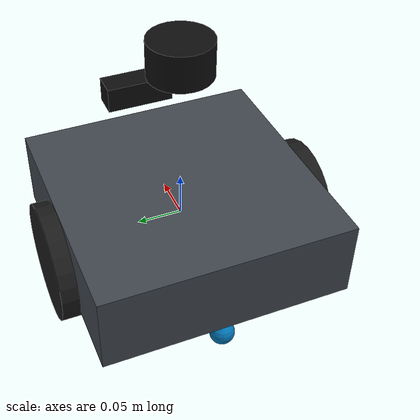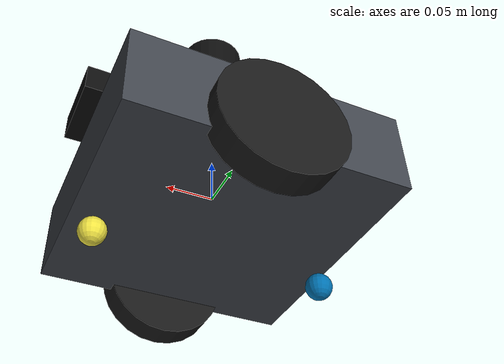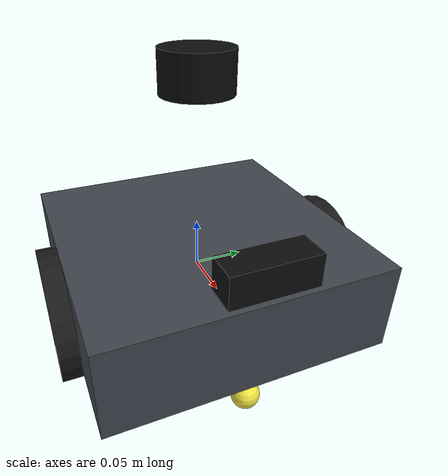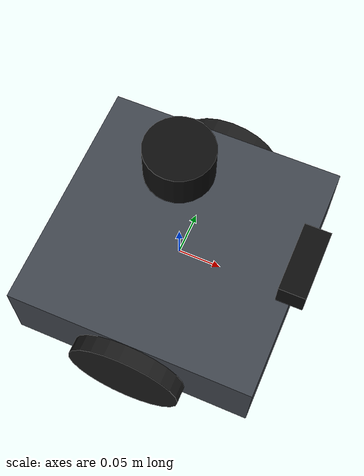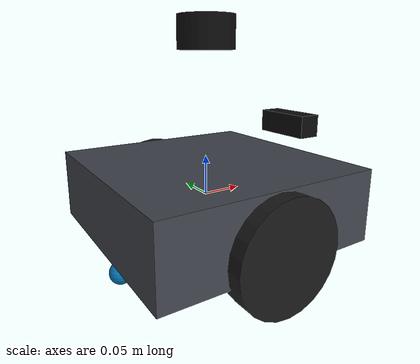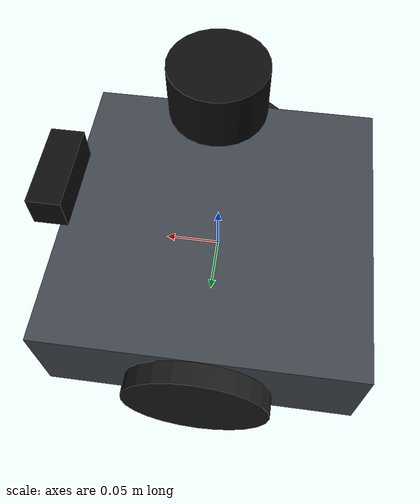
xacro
<?xml version="1.0"?>
<robot xmlns:xacro="http://www.ros.org/wiki/xacro" name="$(arg name)">
  <xacro:arg name="name" default="robot_1"/>
  <xacro:property name="name" value="$(arg name)"/>

  <xacro:property name="wheel_radius" value="0.066"/>
  <xacro:property name="wheel_sep" value="0.288"/>

  <!-- ============================== links =============================== -->
  <link name="${name}_base_link">
    <visual>
      <geometry><box size="0.28 0.28 0.09"/></geometry>
      <material name="body"><color rgba="0.25 0.27 0.30 1"/></material>
    </visual>
    <collision>
      <geometry><box size="0.28 0.28 0.09"/></geometry>
    </collision>
    <inertial>
      <mass value="4.0"/>
      <inertia ixx="0.0185" ixy="0" ixz="0" iyy="0.0185" iyz="0" izz="0.0294"/>
    </inertial>
  </link>

  <xacro:macro name="wheel" params="side y">
    <joint name="${name}_wheel_${side}_joint" type="continuous">
      <parent link="${name}_base_link"/>
      <child link="${name}_wheel_${side}_link"/>
      <origin xyz="0 ${y} -0.022" rpy="${-pi/2} 0 0"/>
      <axis xyz="0 0 1"/>
    </joint>
    <link name="${name}_wheel_${side}_link">
      <visual>
        <geometry><cylinder radius="${wheel_radius}" length="0.03"/></geometry>
        <material name="tire"><color rgba="0.1 0.1 0.1 1"/></material>
      </visual>
      <collision>
        <geometry><cylinder radius="${wheel_radius}" length="0.03"/></geometry>
      </collision>
      <inertial>
        <mass value="0.3"/>
        <inertia ixx="0.00033" ixy="0" ixz="0" iyy="0.00033" iyz="0" izz="0.00058"/>
      </inertial>
    </link>
  </xacro:macro>

  <xacro:wheel side="left" y="${wheel_sep / 2}"/>
  <xacro:wheel side="right" y="${-wheel_sep / 2}"/>

  <xacro:macro name="caster" params="label x">
    <joint name="${name}_caster_${label}_joint" type="fixed">
      <parent link="${name}_base_link"/>
      <child link="${name}_caster_${label}_link"/>
      <origin xyz="${x} 0 -0.076" rpy="0 0 0"/>
    </joint>
    <link name="${name}_caster_${label}_link">
      <visual><geometry><sphere radius="0.014"/></geometry></visual>
      <collision>
        <geometry><sphere radius="0.014"/></geometry>
        <surface><friction><ode><mu>0</mu><mu2>0</mu2></ode></friction></surface>
      </collision>
      <inertial><mass value="0.05"/><inertia ixx="0.00001" ixy="0" ixz="0" iyy="0.00001" iyz="0" izz="0.00001"/></inertial>
    </link>
  </xacro:macro>
  <xacro:caster label="front" x="0.12"/>
  <xacro:caster label="back" x="-0.12"/>

  <joint name="${name}_lidar_joint" type="fixed">
    <parent link="${name}_base_link"/>
    <child link="${name}_lidar_link"/>
    <origin xyz="0 0 0.20" rpy="0 0 0"/>
  </joint>
  <link name="${name}_lidar_link">
    <visual><geometry><cylinder radius="0.035" length="0.04"/></geometry>
      <material name="sensor"><color rgba="0.05 0.05 0.05 1"/></material></visual>
    <inertial><mass value="0.05"/><inertia ixx="0.00003" ixy="0" ixz="0" iyy="0.00003" iyz="0" izz="0.00003"/></inertial>
  </link>

  <joint name="${name}_camera_joint" type="fixed">
    <parent link="${name}_base_link"/>
    <child link="${name}_camera_link"/>
    <origin xyz="0.14 0 0.08" rpy="0 0 0"/>
  </joint>
  <link name="${name}_camera_link">
    <visual><geometry><box size="0.03 0.08 0.03"/></geometry>
      <material name="sensor"><color rgba="0.05 0.05 0.05 1"/></material></visual>
    <inertial><mass value="0.05"/><inertia ixx="0.00002" ixy="0" ixz="0" iyy="0.00002" iyz="0" izz="0.00002"/></inertial>
  </link>
  <!-- ROS optical convention: z forward, x right, y down -->
  <joint name="${name}_camera_optical_joint" type="fixed">
    <parent link="${name}_camera_link"/>
    <child link="${name}_camera_optical_frame"/>
    <origin xyz="0 0 0" rpy="${-pi/2} 0 ${-pi/2}"/>
  </joint>
  <link name="${name}_camera_optical_frame"/>

  <!-- ========================= gazebo sensors =========================== -->
  <gazebo reference="${name}_lidar_link">
    <sensor name="lidar" type="gpu_lidar">
      <pose>0 0 0 0 0 0</pose>
      <topic>/${name}/scan</topic>
      <update_rate>10</update_rate>
      <gz_frame_id>${name}_lidar_link</gz_frame_id>
      <lidar>
        <scan><horizontal><samples>360</samples><resolution>1</resolution>
          <min_angle>-3.14159</min_angle><max_angle>3.14159</max_angle></horizontal></scan>
        <range><min>0.12</min><max>5.0</max><resolution>0.01</resolution></range>
      </lidar>
      <always_on>1</always_on><visualize>false</visualize>
    </sensor>
  </gazebo>

  <gazebo reference="${name}_camera_link">
    <sensor name="camera" type="camera">
      <topic>/${name}/image_raw</topic>
      <camera_info_topic>/${name}/camera_info</camera_info_topic>
      <update_rate>10</update_rate>
      <gz_frame_id>${name}_camera_optical_frame</gz_frame_id>
      <camera>
        <horizontal_fov>1.5</horizontal_fov>
        <image><width>640</width><height>480</height><format>RGB_INT8</format></image>
        <clip><near>0.05</near><far>8.0</far></clip>
      </camera>
      <always_on>1</always_on><visualize>false</visualize>
    </sensor>
  </gazebo>

  <!-- ========================= gazebo systems =========================== -->
  <gazebo>
    <plugin name="diff_drive" filename="gz-sim-diff-drive-system">
      <left_joint>${name}_wheel_left_joint</left_joint>
      <right_joint>${name}_wheel_right_joint</right_joint>
      <wheel_separation>${wheel_sep}</wheel_separation>
      <wheel_radius>${wheel_radius}</wheel_radius>
      <odom_publish_frequency>30</odom_publish_frequency>
      <topic>/${name}/cmd_vel</topic>
      <odom_topic>/${name}/odom</odom_topic>
      <max_linear_acceleration>3.0</max_linear_acceleration>
      <max_angular_acceleration>3.14</max_angular_acceleration>
    </plugin>
    <plugin name="joint_state_publisher" filename="gz-sim-joint-state-publisher-system">
      <joint_names>${name}_wheel_left_joint ${name}_wheel_right_joint</joint_names>
      <topic>/${name}/joint_states</topic>
    </plugin>
  </gazebo>
</robot>
